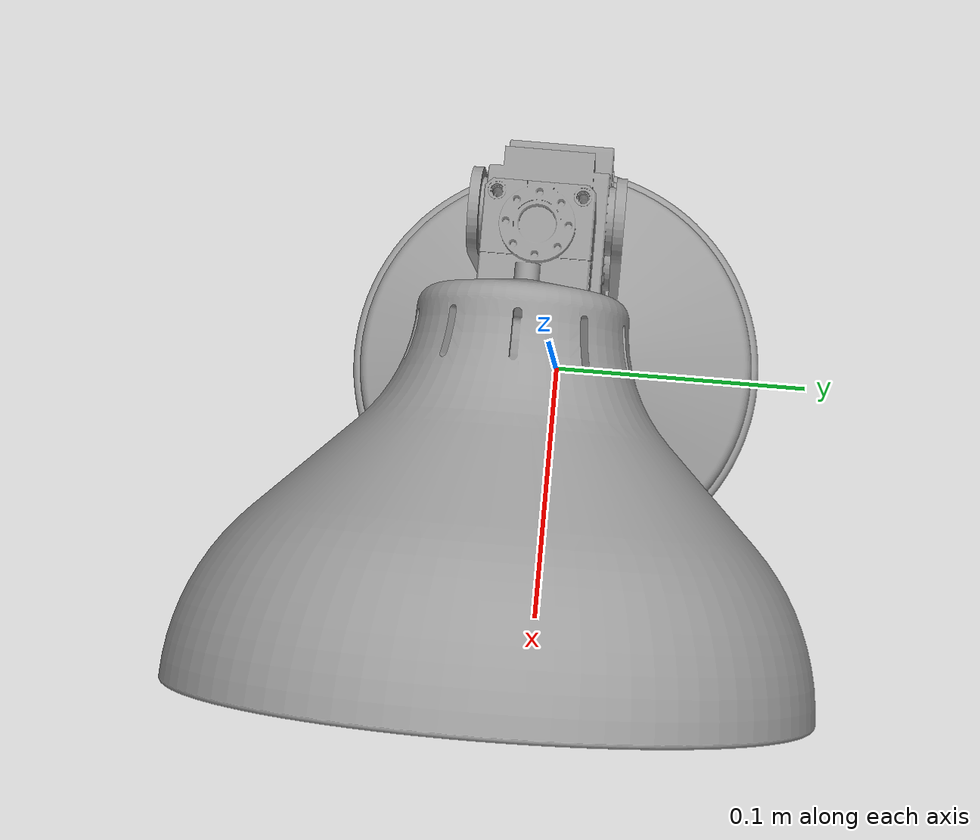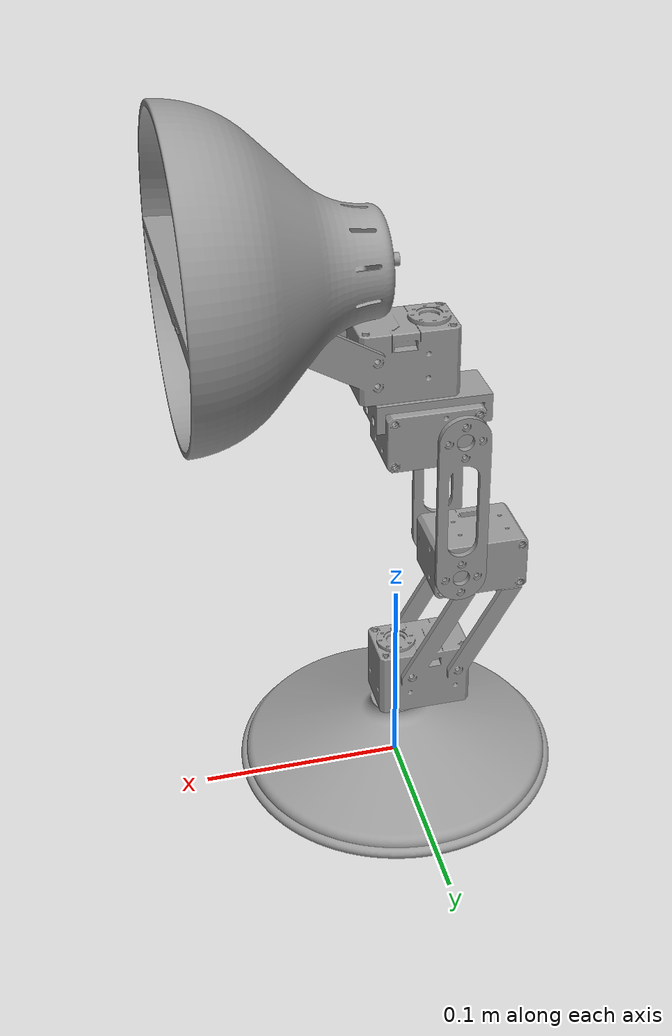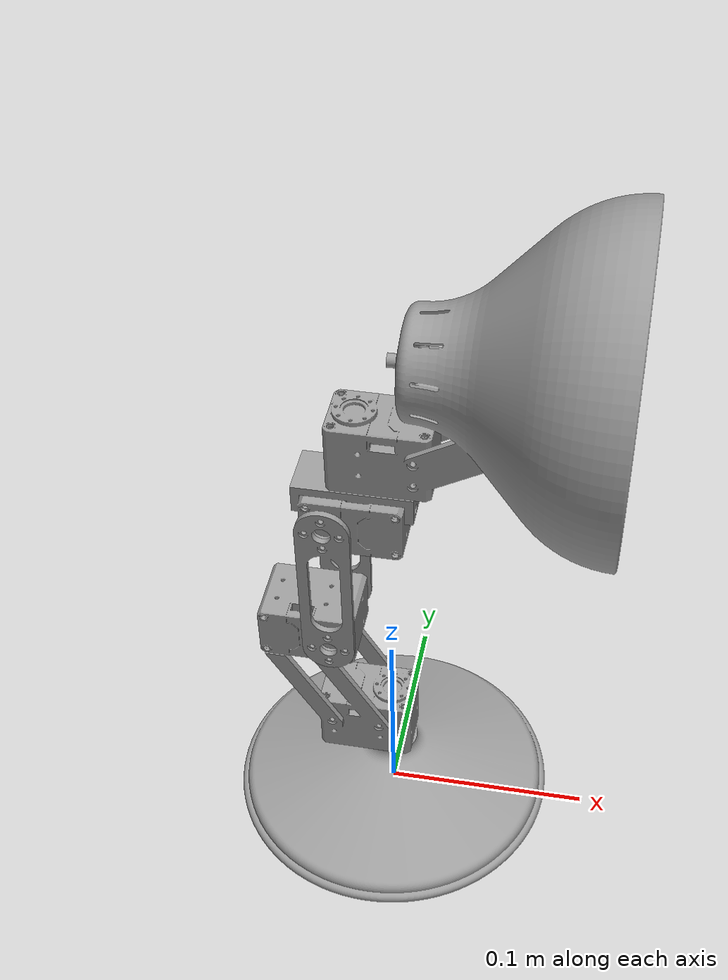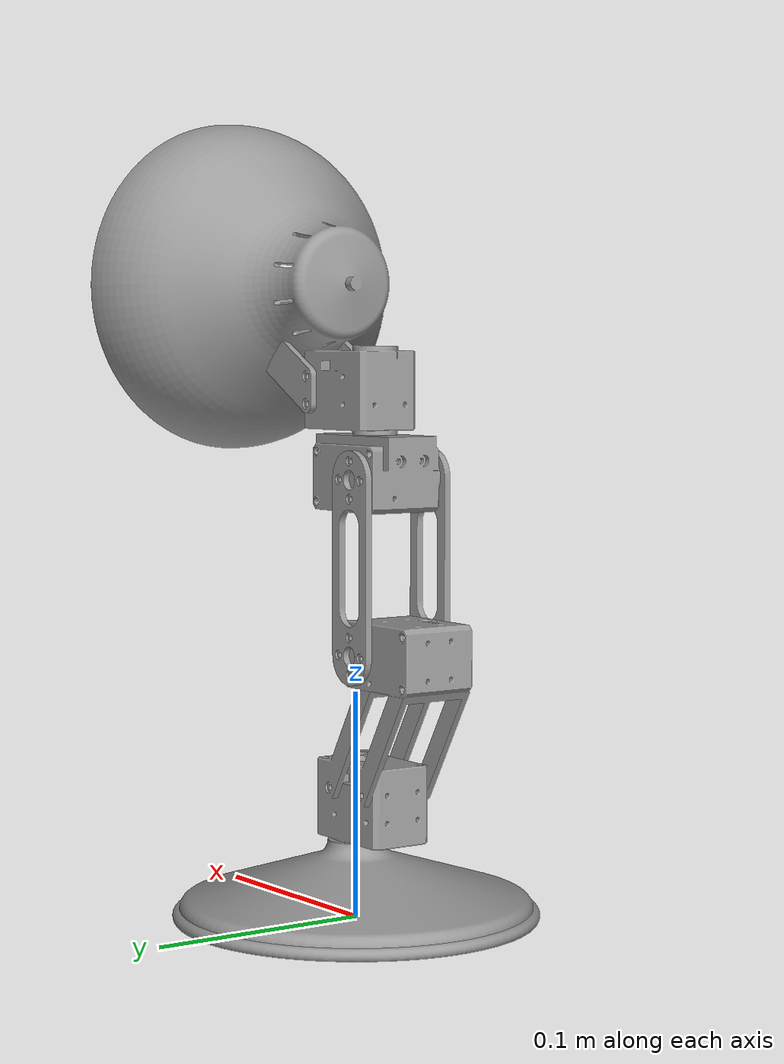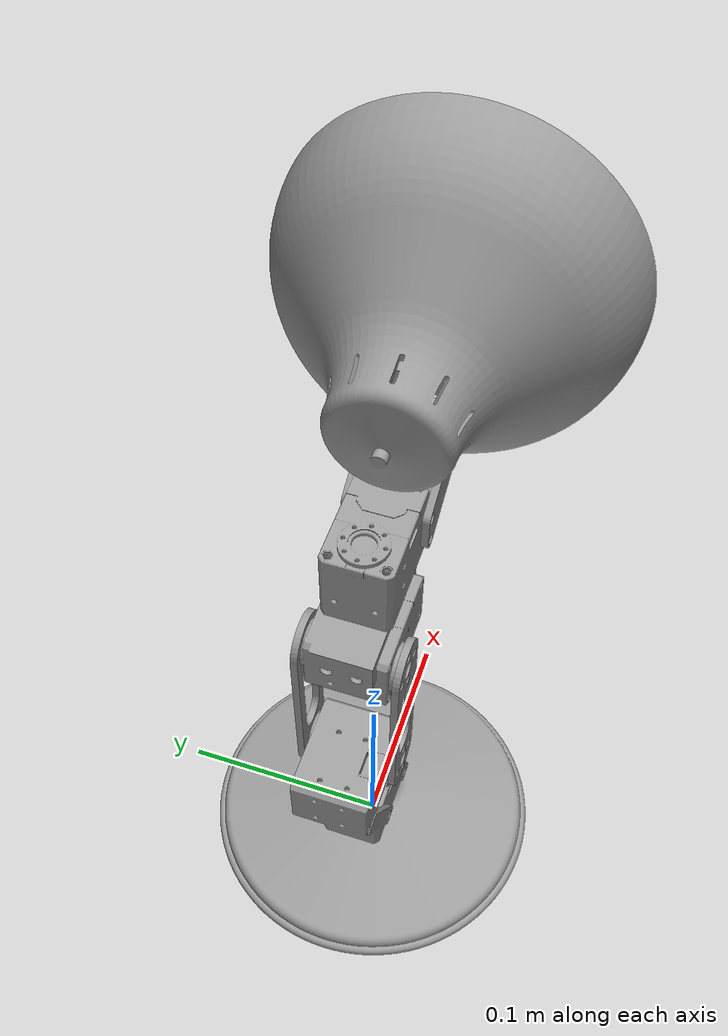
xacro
<?xml version="1.0"?>
<!-- Open_Manipulator Chain -->
<robot name="gazebo_lookso_jr" xmlns:xacro="http://www.ros.org/wiki/xacro">

  <!-- some parameters -->
  <xacro:property name="pi" value="3.141592654" />

  <!-- Import all Gazebo-customization elements, including Gazebo colors -->
  <xacro:include filename="$(find lookso_jr_description)/urdf/lookso_jr.gazebo.xacro" />
  <!-- Import Rviz colors -->
  <xacro:include filename="$(find lookso_jr_description)/urdf/materials.xacro" />

  <!-- World -->
  <link name="world">
  </link>

  <!-- World fixed joint-->
  <joint name="world_fixed" type="fixed">
    <origin xyz="0 0 0" rpy="0 0 0"/>
    <parent link="world"/>
    <child link="link1"/>
  </joint>

  <!-- Link 1 -->
  <link name="link1">
    <collision>
      <origin xyz="0.0 0.0 0.0" rpy="0 0 0"/>
      <geometry>
        <mesh filename="package://lookso_jr_description/meshes/link1.stl" scale="0.001 0.001 0.001"/>
      </geometry>
    </collision>

    <visual>
      <origin xyz="0.0 0.0 0.0" rpy="0 0 0"/>
      <geometry>
        <mesh filename="package://lookso_jr_description/meshes/link1.stl" scale="0.001 0.001 0.001"/>
      </geometry>
      <material name="grey"/>
    </visual>

    <inertial>
      <origin xyz="0 0 0" />
      <mass value="${0.1*100}" />
      <inertia ixx="1.0" ixy="0.0" ixz="0.0"
               iyy="1.0" iyz="0.0"
               izz="1.0" />
    </inertial>
  </link>

  <!-- Joint 1 -->
  <joint name="joint1" type="revolute">
    <parent link="link1"/>
    <child link="link2"/>
    <origin xyz="0.0 0.0 0.054" rpy="0 0 0"/>
    <axis xyz="0 0 1"/>
    <limit velocity="6.5" effort="1000" lower="${-pi*0.9}" upper="${pi*0.9}" />
    <dynamics damping="0.1"/>
  </joint>

  <!-- Link 2 -->
  <link name="link2">
    <collision>
      <origin xyz="0.0 0.0 -0.054" rpy="0 0 0"/>
      <geometry>
        <mesh filename="package://lookso_jr_description/meshes/link2.stl" scale="0.001 0.001 0.001"/>
      </geometry>
    </collision>

    <visual>
      <origin xyz="0.0 0.0 -0.054" rpy="0 0 0"/>
      <geometry>
        <mesh filename="package://lookso_jr_description/meshes/link2.stl" scale="0.001 0.001 0.001"/>
      </geometry>
      <material name="grey"/>
    </visual>

    <inertial>
      <origin xyz="0 0 0" />
      <mass value="0.4" />
      <inertia ixx="1.0" ixy="0.0" ixz="0.0"
               iyy="1.0" iyz="0.0"
               izz="1.0" />
    </inertial>
  </link>

  <!-- Joint 2 -->
  <joint name="joint2" type="revolute">
    <parent link="link2"/>
    <child link="link3"/>
    <origin xyz="-0.0263 0.0 0.0658" rpy="0 0 0"/>
    <axis xyz="0 1 0"/>
    <limit velocity="6.5" effort="1000" lower="${-pi*0.9}" upper="${pi*0.9}" />
    <dynamics damping="0.1"/>
  </joint>

  <!-- Link 3 -->
  <link name="link3">
    <collision>
      <origin xyz="0.0263 0.0 -0.1198" rpy="0 0 0"/>
      <geometry>
        <mesh filename="package://lookso_jr_description/meshes/link3.stl" scale="0.001 0.001 0.001"/>
      </geometry>
    </collision>

    <visual>
      <origin xyz="0.0263 0.0 -0.1198" rpy="0 0 0"/>
      <geometry>
        <mesh filename="package://lookso_jr_description/meshes/link3.stl" scale="0.001 0.001 0.001"/>
      </geometry>
      <material name="grey"/>
    </visual>

    <inertial>
      <origin xyz="0 0 0" />
      <mass value="${0.05*100}" />
      <inertia ixx="1.0" ixy="0.0" ixz="0.0"
               iyy="1.0" iyz="0.0"
               izz="1.0" />
    </inertial>
  </link>

  <!-- Joint 3 -->
  <joint name="joint3" type="revolute">
    <parent link="link3"/>
    <child link="link4"/>
    <origin xyz="0.0 0 0.075" rpy="0 0 0"/>
    <axis xyz="0 1 0"/>
    <limit velocity="6.5" effort="1000" lower="${-pi*0.9}" upper="${pi*0.9}" />
    <dynamics damping="0.1"/>
  </joint>

  <!-- Link 4 -->
  <link name="link4">
    <collision>
      <origin xyz="0.0263 0.0 -0.1948" rpy="0 0 0"/>
      <geometry>
        <mesh filename="package://lookso_jr_description/meshes/link4.stl" scale="0.001 0.001 0.001"/>
      </geometry>
    </collision>

    <visual>
      <origin xyz="0.0263 0.0 -0.1948" rpy="0 0 0"/>
      <geometry>
        <mesh filename="package://lookso_jr_description/meshes/link4.stl" scale="0.001 0.001 0.001"/>
      </geometry>
      <material name="grey"/>
    </visual>

    <inertial>
      <origin xyz="0 0 0" />
      <mass value="${0.2*100}" />
      <inertia ixx="1.0" ixy="0.0" ixz="0.0"
               iyy="1.0" iyz="0.0"
               izz="1.0" />
    </inertial>
  </link>

  <!-- Joint 4 -->
  <joint name="joint4" type="revolute">
    <parent link="link4"/>
    <child link="link5"/>
    <origin xyz="0.012 0.0 0.0373" rpy="0 0 0"/>
    <axis xyz="0 0 1"/>
    <limit velocity="6.5" effort="1000" lower="${-pi*0.9}" upper="${pi*0.9}" />
    <dynamics damping="0.1"/>
  </joint>

  <link name="link5">
    <collision>
      <origin xyz="0.0143 0.0 -0.2321" rpy="0 0 0"/>
      <geometry>
        <mesh filename="package://lookso_jr_description/meshes/link5.stl" scale="0.001 0.001 0.001"/>
      </geometry>
    </collision>

    <visual>
      <origin xyz="0.0143 0.0 -0.2321" rpy="0 0 0"/>
      <geometry>
        <mesh filename="package://lookso_jr_description/meshes/link5.stl" scale="0.001 0.001 0.001"/>
      </geometry>
      <material name="grey"/>
    </visual>

    <inertial>
      <origin xyz="0.075 0 0.050" />
      <mass value="${0.7*100}" />
      <inertia ixx="1.0" ixy="0.0" ixz="0.0"
               iyy="1.0" iyz="0.0"
               izz="1.0" />
    </inertial>
  </link>
</robot>
